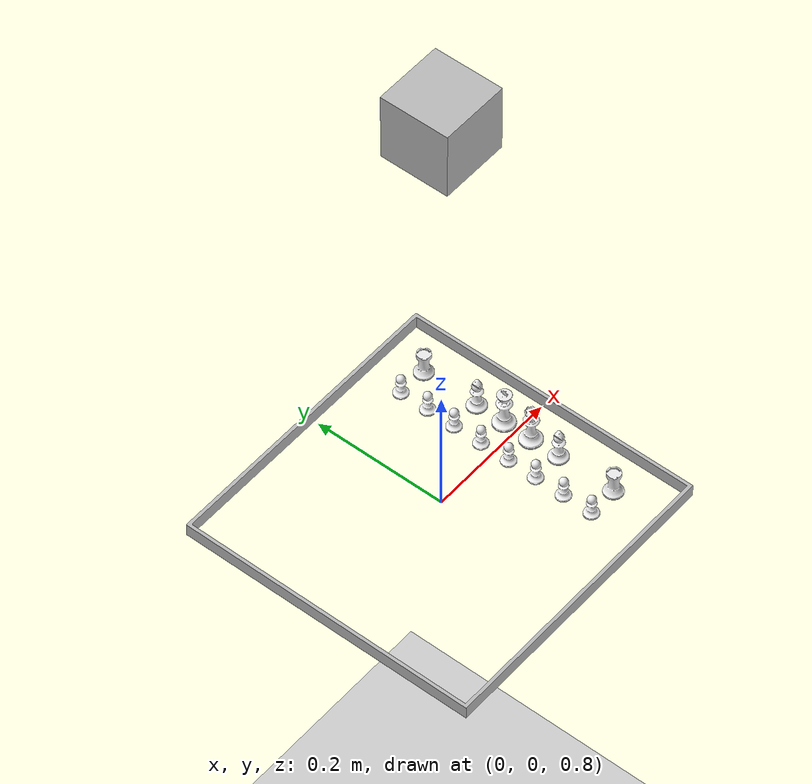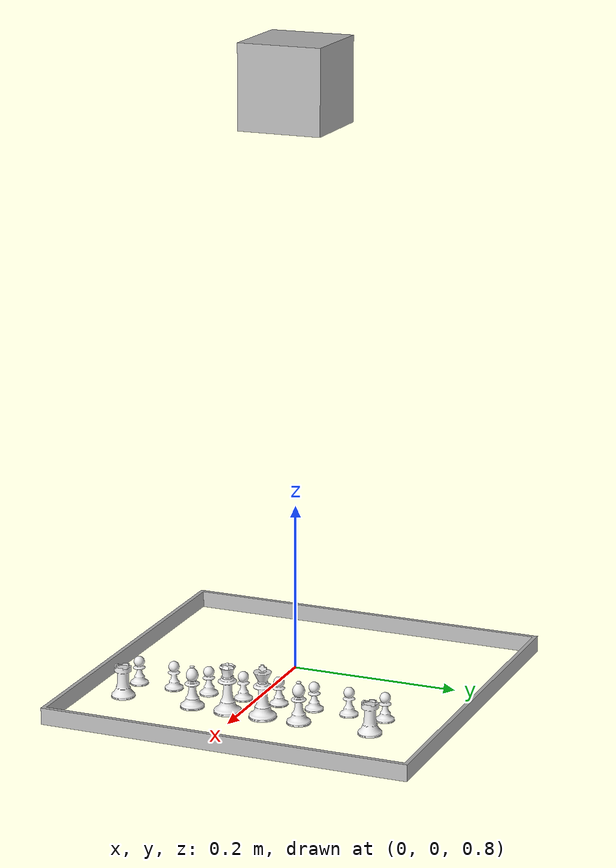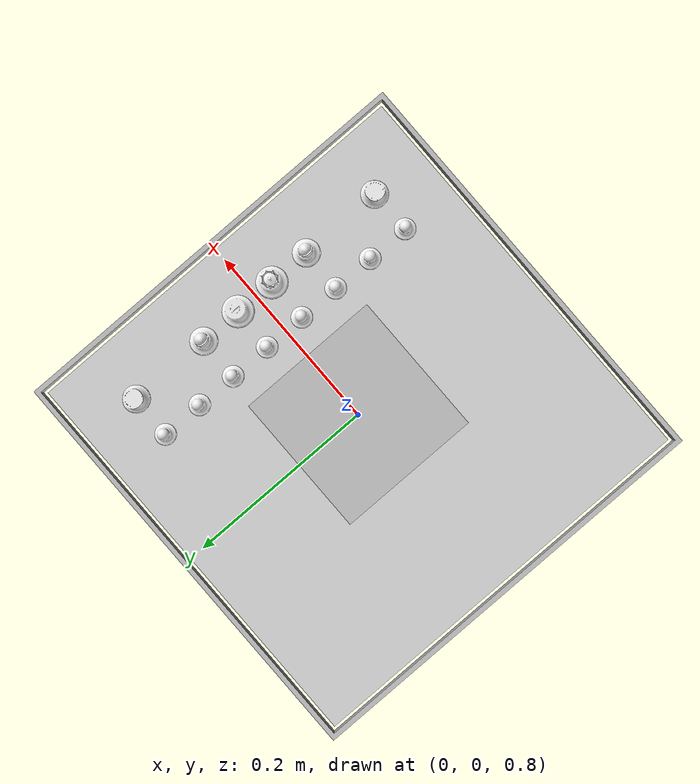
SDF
<sdf version="1.7">
 <world name="default">
  <model name="ground_plane">
   <static>1</static>
   <link name="link">
    <collision name="collision">
     <geometry><plane><normal>0 0 1</normal><size>100 100</size></plane></geometry>
     <surface>
      <contact><collide_bitmask>65535</collide_bitmask></contact>
      <friction><ode><mu>100</mu><mu2>50</mu2></ode></friction>
     </surface>
    </collision>
    <visual name="visual">
     <cast_shadows>0</cast_shadows>
     <geometry><plane><normal>0 0 1</normal><size>100 100</size></plane></geometry>
     <material>
      <script><uri>file://media/materials/scripts/gazebo.material</uri><name>Gazebo/Grey</name></script>
     </material>
    </visual>
   </link>
  </model>
  <model name="pawn_white">
   <link name="link">
    <inertial>
     <mass>0.1</mass>
     <inertia>
      <ixx>0.166667</ixx>
      <ixy>0</ixy>
      <ixz>0</ixz>
      <iyy>0.166667</iyy>
      <iyz>0</iyz>
      <izz>0.166667</izz>
     </inertia>
    </inertial>
    <visual name="visual">
     <geometry><mesh><uri>model://pawn_white/pawn.stl</uri><scale>0.001 0.001 0.001</scale></mesh></geometry>
     <material>
      <lighting>1</lighting>
      <script><uri>file://media/materials/scripts/gazebo.material</uri><name>Gazebo/White</name></script>
      <shader type="pixel"><normal_map>__default__</normal_map></shader>
      <ambient>1 1 1 1</ambient>
      <diffuse>1 1 1 1</diffuse>
      <specular>0.1 0.1 0.1 1</specular>
      <emissive>0 0 0 1</emissive>
     </material>
    </visual>
    <collision name="collision">
     <geometry><mesh><uri>model://pawn_white/pawn.stl</uri><scale>0.001 0.001 0.001</scale></mesh></geometry>
     <surface>
      <friction>
       <ode><mu>1</mu><mu2>1</mu2><fdir1>0 0 0</fdir1><slip1>0</slip1><slip2>0</slip2></ode>
       <torsional>
        <coefficient>1</coefficient>
        <patch_radius>0</patch_radius>
        <surface_radius>0</surface_radius>
        <use_patch_radius>1</use_patch_radius>
        <ode><slip>0</slip></ode>
       </torsional>
      </friction>
      <bounce><restitution_coefficient>0</restitution_coefficient><threshold>1e+06</threshold></bounce>
      <contact>
       <collide_without_contact>0</collide_without_contact>
       <collide_without_contact_bitmask>1</collide_without_contact_bitmask>
       <collide_bitmask>1</collide_bitmask>
       <ode>
        <soft_cfm>0</soft_cfm>
        <soft_erp>0.2</soft_erp>
        <kp>1e+13</kp>
        <kd>1</kd>
        <max_vel>0.01</max_vel>
        <min_depth>0</min_depth>
       </ode>
       <bullet>
        <split_impulse>1</split_impulse>
        <split_impulse_penetration_threshold>-0.01</split_impulse_penetration_threshold>
        <soft_cfm>0</soft_cfm>
        <soft_erp>0.2</soft_erp>
        <kp>1e+13</kp>
        <kd>1</kd>
       </bullet>
      </contact>
     </surface>
    </collision>
   </link>
   <static>0</static>
   <pose>0.108293 -0.153419 0.795226 -0.00037 -2.4e-05 0.004243</pose>
  </model>
  <model name="pawn_white_0">
   <link name="link">
    <inertial>
     <mass>0.1</mass>
     <inertia>
      <ixx>0.166667</ixx>
      <ixy>0</ixy>
      <ixz>0</ixz>
      <iyy>0.166667</iyy>
      <iyz>0</iyz>
      <izz>0.166667</izz>
     </inertia>
    </inertial>
    <visual name="visual">
     <geometry><mesh><uri>model://pawn_white/pawn.stl</uri><scale>0.001 0.001 0.001</scale></mesh></geometry>
     <material>
      <lighting>1</lighting>
      <script><uri>file://media/materials/scripts/gazebo.material</uri><name>Gazebo/White</name></script>
      <shader type="pixel"><normal_map>__default__</normal_map></shader>
      <ambient>1 1 1 1</ambient>
      <diffuse>1 1 1 1</diffuse>
      <specular>0.1 0.1 0.1 1</specular>
      <emissive>0 0 0 1</emissive>
     </material>
    </visual>
    <collision name="collision">
     <geometry><mesh><uri>model://pawn_white/pawn.stl</uri><scale>0.001 0.001 0.001</scale></mesh></geometry>
     <surface>
      <friction>
       <ode><mu>1</mu><mu2>1</mu2><fdir1>0 0 0</fdir1><slip1>0</slip1><slip2>0</slip2></ode>
       <torsional>
        <coefficient>1</coefficient>
        <patch_radius>0</patch_radius>
        <surface_radius>0</surface_radius>
        <use_patch_radius>1</use_patch_radius>
        <ode><slip>0</slip></ode>
       </torsional>
      </friction>
      <bounce><restitution_coefficient>0</restitution_coefficient><threshold>1e+06</threshold></bounce>
      <contact>
       <collide_without_contact>0</collide_without_contact>
       <collide_without_contact_bitmask>1</collide_without_contact_bitmask>
       <collide_bitmask>1</collide_bitmask>
       <ode>
        <soft_cfm>0</soft_cfm>
        <soft_erp>0.2</soft_erp>
        <kp>1e+13</kp>
        <kd>1</kd>
        <max_vel>0.01</max_vel>
        <min_depth>0</min_depth>
       </ode>
       <bullet>
        <split_impulse>1</split_impulse>
        <split_impulse_penetration_threshold>-0.01</split_impulse_penetration_threshold>
        <soft_cfm>0</soft_cfm>
        <soft_erp>0.2</soft_erp>
        <kp>1e+13</kp>
        <kd>1</kd>
       </bullet>
      </contact>
     </surface>
    </collision>
   </link>
   <static>0</static>
   <pose>0.10847 -0.108572 0.795231 0.000772 -2.1e-05 0.008904</pose>
  </model>
  <model name="pawn_white_1">
   <link name="link">
    <inertial>
     <mass>0.1</mass>
     <inertia>
      <ixx>0.166667</ixx>
      <ixy>0</ixy>
      <ixz>0</ixz>
      <iyy>0.166667</iyy>
      <iyz>0</iyz>
      <izz>0.166667</izz>
     </inertia>
    </inertial>
    <visual name="visual">
     <geometry><mesh><uri>model://pawn_white/pawn.stl</uri><scale>0.001 0.001 0.001</scale></mesh></geometry>
     <material>
      <lighting>1</lighting>
      <script><uri>file://media/materials/scripts/gazebo.material</uri><name>Gazebo/White</name></script>
      <shader type="pixel"><normal_map>__default__</normal_map></shader>
      <ambient>1 1 1 1</ambient>
      <diffuse>1 1 1 1</diffuse>
      <specular>0.1 0.1 0.1 1</specular>
      <emissive>0 0 0 1</emissive>
     </material>
    </visual>
    <collision name="collision">
     <geometry><mesh><uri>model://pawn_white/pawn.stl</uri><scale>0.001 0.001 0.001</scale></mesh></geometry>
     <surface>
      <friction>
       <ode><mu>1</mu><mu2>1</mu2><fdir1>0 0 0</fdir1><slip1>0</slip1><slip2>0</slip2></ode>
       <torsional>
        <coefficient>1</coefficient>
        <patch_radius>0</patch_radius>
        <surface_radius>0</surface_radius>
        <use_patch_radius>1</use_patch_radius>
        <ode><slip>0</slip></ode>
       </torsional>
      </friction>
      <bounce><restitution_coefficient>0</restitution_coefficient><threshold>1e+06</threshold></bounce>
      <contact>
       <collide_without_contact>0</collide_without_contact>
       <collide_without_contact_bitmask>1</collide_without_contact_bitmask>
       <collide_bitmask>1</collide_bitmask>
       <ode>
        <soft_cfm>0</soft_cfm>
        <soft_erp>0.2</soft_erp>
        <kp>1e+13</kp>
        <kd>1</kd>
        <max_vel>0.01</max_vel>
        <min_depth>0</min_depth>
       </ode>
       <bullet>
        <split_impulse>1</split_impulse>
        <split_impulse_penetration_threshold>-0.01</split_impulse_penetration_threshold>
        <soft_cfm>0</soft_cfm>
        <soft_erp>0.2</soft_erp>
        <kp>1e+13</kp>
        <kd>1</kd>
       </bullet>
      </contact>
     </surface>
    </collision>
   </link>
   <static>0</static>
   <pose>0.108512 -0.064083 0.795224 0.000133 2.1e-05 0.023056</pose>
  </model>
  <model name="pawn_white_2">
   <link name="link">
    <inertial>
     <mass>0.1</mass>
     <inertia>
      <ixx>0.166667</ixx>
      <ixy>0</ixy>
      <ixz>0</ixz>
      <iyy>0.166667</iyy>
      <iyz>0</iyz>
      <izz>0.166667</izz>
     </inertia>
    </inertial>
    <visual name="visual">
     <geometry><mesh><uri>model://pawn_white/pawn.stl</uri><scale>0.001 0.001 0.001</scale></mesh></geometry>
     <material>
      <lighting>1</lighting>
      <script><uri>file://media/materials/scripts/gazebo.material</uri><name>Gazebo/White</name></script>
      <shader type="pixel"><normal_map>__default__</normal_map></shader>
      <ambient>1 1 1 1</ambient>
      <diffuse>1 1 1 1</diffuse>
      <specular>0.1 0.1 0.1 1</specular>
      <emissive>0 0 0 1</emissive>
     </material>
    </visual>
    <collision name="collision">
     <geometry><mesh><uri>model://pawn_white/pawn.stl</uri><scale>0.001 0.001 0.001</scale></mesh></geometry>
     <surface>
      <friction>
       <ode><mu>1</mu><mu2>1</mu2><fdir1>0 0 0</fdir1><slip1>0</slip1><slip2>0</slip2></ode>
       <torsional>
        <coefficient>1</coefficient>
        <patch_radius>0</patch_radius>
        <surface_radius>0</surface_radius>
        <use_patch_radius>1</use_patch_radius>
        <ode><slip>0</slip></ode>
       </torsional>
      </friction>
      <bounce><restitution_coefficient>0</restitution_coefficient><threshold>1e+06</threshold></bounce>
      <contact>
       <collide_without_contact>0</collide_without_contact>
       <collide_without_contact_bitmask>1</collide_without_contact_bitmask>
       <collide_bitmask>1</collide_bitmask>
       <ode>
        <soft_cfm>0</soft_cfm>
        <soft_erp>0.2</soft_erp>
        <kp>1e+13</kp>
        <kd>1</kd>
        <max_vel>0.01</max_vel>
        <min_depth>0</min_depth>
       </ode>
       <bullet>
        <split_impulse>1</split_impulse>
        <split_impulse_penetration_threshold>-0.01</split_impulse_penetration_threshold>
        <soft_cfm>0</soft_cfm>
        <soft_erp>0.2</soft_erp>
        <kp>1e+13</kp>
        <kd>1</kd>
       </bullet>
      </contact>
     </surface>
    </collision>
   </link>
   <static>0</static>
   <pose>0.108532 -0.020463 0.795231 -0.000812 0.000112 0.013914</pose>
  </model>
  <model name="pawn_white_3">
   <link name="link">
    <inertial>
     <mass>0.1</mass>
     <inertia>
      <ixx>0.166667</ixx>
      <ixy>0</ixy>
      <ixz>0</ixz>
      <iyy>0.166667</iyy>
      <iyz>0</iyz>
      <izz>0.166667</izz>
     </inertia>
    </inertial>
    <visual name="visual">
     <geometry><mesh><uri>model://pawn_white/pawn.stl</uri><scale>0.001 0.001 0.001</scale></mesh></geometry>
     <material>
      <lighting>1</lighting>
      <script><uri>file://media/materials/scripts/gazebo.material</uri><name>Gazebo/White</name></script>
      <shader type="pixel"><normal_map>__default__</normal_map></shader>
      <ambient>1 1 1 1</ambient>
      <diffuse>1 1 1 1</diffuse>
      <specular>0.1 0.1 0.1 1</specular>
      <emissive>0 0 0 1</emissive>
     </material>
    </visual>
    <collision name="collision">
     <geometry><mesh><uri>model://pawn_white/pawn.stl</uri><scale>0.001 0.001 0.001</scale></mesh></geometry>
     <surface>
      <friction>
       <ode><mu>1</mu><mu2>1</mu2><fdir1>0 0 0</fdir1><slip1>0</slip1><slip2>0</slip2></ode>
       <torsional>
        <coefficient>1</coefficient>
        <patch_radius>0</patch_radius>
        <surface_radius>0</surface_radius>
        <use_patch_radius>1</use_patch_radius>
        <ode><slip>0</slip></ode>
       </torsional>
      </friction>
      <bounce><restitution_coefficient>0</restitution_coefficient><threshold>1e+06</threshold></bounce>
      <contact>
       <collide_without_contact>0</collide_without_contact>
       <collide_without_contact_bitmask>1</collide_without_contact_bitmask>
       <collide_bitmask>1</collide_bitmask>
       <ode>
        <soft_cfm>0</soft_cfm>
        <soft_erp>0.2</soft_erp>
        <kp>1e+13</kp>
        <kd>1</kd>
        <max_vel>0.01</max_vel>
        <min_depth>0</min_depth>
       </ode>
       <bullet>
        <split_impulse>1</split_impulse>
        <split_impulse_penetration_threshold>-0.01</split_impulse_penetration_threshold>
        <soft_cfm>0</soft_cfm>
        <soft_erp>0.2</soft_erp>
        <kp>1e+13</kp>
        <kd>1</kd>
       </bullet>
      </contact>
     </surface>
    </collision>
   </link>
   <static>0</static>
   <pose>0.108569 0.024248 0.795231 0.000532 -0.000583 0.00706</pose>
  </model>
  <model name="pawn_white_4">
   <link name="link">
    <inertial>
     <mass>0.1</mass>
     <inertia>
      <ixx>0.166667</ixx>
      <ixy>0</ixy>
      <ixz>0</ixz>
      <iyy>0.166667</iyy>
      <iyz>0</iyz>
      <izz>0.166667</izz>
     </inertia>
    </inertial>
    <visual name="visual">
     <geometry><mesh><uri>model://pawn_white/pawn.stl</uri><scale>0.001 0.001 0.001</scale></mesh></geometry>
     <material>
      <lighting>1</lighting>
      <script><uri>file://media/materials/scripts/gazebo.material</uri><name>Gazebo/White</name></script>
      <shader type="pixel"><normal_map>__default__</normal_map></shader>
      <ambient>1 1 1 1</ambient>
      <diffuse>1 1 1 1</diffuse>
      <specular>0.1 0.1 0.1 1</specular>
      <emissive>0 0 0 1</emissive>
     </material>
    </visual>
    <collision name="collision">
     <geometry><mesh><uri>model://pawn_white/pawn.stl</uri><scale>0.001 0.001 0.001</scale></mesh></geometry>
     <surface>
      <friction>
       <ode><mu>1</mu><mu2>1</mu2><fdir1>0 0 0</fdir1><slip1>0</slip1><slip2>0</slip2></ode>
       <torsional>
        <coefficient>1</coefficient>
        <patch_radius>0</patch_radius>
        <surface_radius>0</surface_radius>
        <use_patch_radius>1</use_patch_radius>
        <ode><slip>0</slip></ode>
       </torsional>
      </friction>
      <bounce><restitution_coefficient>0</restitution_coefficient><threshold>1e+06</threshold></bounce>
      <contact>
       <collide_without_contact>0</collide_without_contact>
       <collide_without_contact_bitmask>1</collide_without_contact_bitmask>
       <collide_bitmask>1</collide_bitmask>
       <ode>
        <soft_cfm>0</soft_cfm>
        <soft_erp>0.2</soft_erp>
        <kp>1e+13</kp>
        <kd>1</kd>
        <max_vel>0.01</max_vel>
        <min_depth>0</min_depth>
       </ode>
       <bullet>
        <split_impulse>1</split_impulse>
        <split_impulse_penetration_threshold>-0.01</split_impulse_penetration_threshold>
        <soft_cfm>0</soft_cfm>
        <soft_erp>0.2</soft_erp>
        <kp>1e+13</kp>
        <kd>1</kd>
       </bullet>
      </contact>
     </surface>
    </collision>
   </link>
   <static>0</static>
   <pose>0.108574 0.068031 0.795226 0.000129 -0.000297 0.000487</pose>
  </model>
  <model name="pawn_white_5">
   <link name="link">
    <inertial>
     <mass>0.1</mass>
     <inertia>
      <ixx>0.166667</ixx>
      <ixy>0</ixy>
      <ixz>0</ixz>
      <iyy>0.166667</iyy>
      <iyz>0</iyz>
      <izz>0.166667</izz>
     </inertia>
    </inertial>
    <visual name="visual">
     <geometry><mesh><uri>model://pawn_white/pawn.stl</uri><scale>0.001 0.001 0.001</scale></mesh></geometry>
     <material>
      <lighting>1</lighting>
      <script><uri>file://media/materials/scripts/gazebo.material</uri><name>Gazebo/White</name></script>
      <shader type="pixel"><normal_map>__default__</normal_map></shader>
      <ambient>1 1 1 1</ambient>
      <diffuse>1 1 1 1</diffuse>
      <specular>0.1 0.1 0.1 1</specular>
      <emissive>0 0 0 1</emissive>
     </material>
    </visual>
    <collision name="collision">
     <geometry><mesh><uri>model://pawn_white/pawn.stl</uri><scale>0.001 0.001 0.001</scale></mesh></geometry>
     <surface>
      <friction>
       <ode><mu>1</mu><mu2>1</mu2><fdir1>0 0 0</fdir1><slip1>0</slip1><slip2>0</slip2></ode>
       <torsional>
        <coefficient>1</coefficient>
        <patch_radius>0</patch_radius>
        <surface_radius>0</surface_radius>
        <use_patch_radius>1</use_patch_radius>
        <ode><slip>0</slip></ode>
       </torsional>
      </friction>
      <bounce><restitution_coefficient>0</restitution_coefficient><threshold>1e+06</threshold></bounce>
      <contact>
       <collide_without_contact>0</collide_without_contact>
       <collide_without_contact_bitmask>1</collide_without_contact_bitmask>
       <collide_bitmask>1</collide_bitmask>
       <ode>
        <soft_cfm>0</soft_cfm>
        <soft_erp>0.2</soft_erp>
        <kp>1e+13</kp>
        <kd>1</kd>
        <max_vel>0.01</max_vel>
        <min_depth>0</min_depth>
       </ode>
       <bullet>
        <split_impulse>1</split_impulse>
        <split_impulse_penetration_threshold>-0.01</split_impulse_penetration_threshold>
        <soft_cfm>0</soft_cfm>
        <soft_erp>0.2</soft_erp>
        <kp>1e+13</kp>
        <kd>1</kd>
       </bullet>
      </contact>
     </surface>
    </collision>
   </link>
   <static>0</static>
   <pose>0.108693 0.111114 0.795187 -0.000192 -0.000199 -0.010673</pose>
  </model>
  <model name="pawn_white_6">
   <link name="link">
    <inertial>
     <mass>0.1</mass>
     <inertia>
      <ixx>0.166667</ixx>
      <ixy>0</ixy>
      <ixz>0</ixz>
      <iyy>0.166667</iyy>
      <iyz>0</iyz>
      <izz>0.166667</izz>
     </inertia>
    </inertial>
    <visual name="visual">
     <geometry><mesh><uri>model://pawn_white/pawn.stl</uri><scale>0.001 0.001 0.001</scale></mesh></geometry>
     <material>
      <lighting>1</lighting>
      <script><uri>file://media/materials/scripts/gazebo.material</uri><name>Gazebo/White</name></script>
      <shader type="pixel"><normal_map>__default__</normal_map></shader>
      <ambient>1 1 1 1</ambient>
      <diffuse>1 1 1 1</diffuse>
      <specular>0.1 0.1 0.1 1</specular>
      <emissive>0 0 0 1</emissive>
     </material>
    </visual>
    <collision name="collision">
     <geometry><mesh><uri>model://pawn_white/pawn.stl</uri><scale>0.001 0.001 0.001</scale></mesh></geometry>
     <surface>
      <friction>
       <ode><mu>1</mu><mu2>1</mu2><fdir1>0 0 0</fdir1><slip1>0</slip1><slip2>0</slip2></ode>
       <torsional>
        <coefficient>1</coefficient>
        <patch_radius>0</patch_radius>
        <surface_radius>0</surface_radius>
        <use_patch_radius>1</use_patch_radius>
        <ode><slip>0</slip></ode>
       </torsional>
      </friction>
      <bounce><restitution_coefficient>0</restitution_coefficient><threshold>1e+06</threshold></bounce>
      <contact>
       <collide_without_contact>0</collide_without_contact>
       <collide_without_contact_bitmask>1</collide_without_contact_bitmask>
       <collide_bitmask>1</collide_bitmask>
       <ode>
        <soft_cfm>0</soft_cfm>
        <soft_erp>0.2</soft_erp>
        <kp>1e+13</kp>
        <kd>1</kd>
        <max_vel>0.01</max_vel>
        <min_depth>0</min_depth>
       </ode>
       <bullet>
        <split_impulse>1</split_impulse>
        <split_impulse_penetration_threshold>-0.01</split_impulse_penetration_threshold>
        <soft_cfm>0</soft_cfm>
        <soft_erp>0.2</soft_erp>
        <kp>1e+13</kp>
        <kd>1</kd>
       </bullet>
      </contact>
     </surface>
    </collision>
   </link>
   <static>0</static>
   <pose>0.108595 0.155192 0.795232 0.000167 -0.000938 -0.018302</pose>
  </model>
  <model name="rook_white">
   <link name="link">
    <inertial>
     <mass>0.1</mass>
     <inertia>
      <ixx>0.166667</ixx>
      <ixy>0</ixy>
      <ixz>0</ixz>
      <iyy>0.166667</iyy>
      <iyz>0</iyz>
      <izz>0.166667</izz>
     </inertia>
    </inertial>
    <visual name="visual">
     <geometry><mesh><uri>model://rook_white/rook.stl</uri><scale>0.001 0.001 0.001</scale></mesh></geometry>
     <material>
      <lighting>1</lighting>
      <script><uri>file://media/materials/scripts/gazebo.material</uri><name>Gazebo/White</name></script>
      <shader type="pixel"><normal_map>__default__</normal_map></shader>
      <ambient>1 1 1 1</ambient>
      <diffuse>1 1 1 1</diffuse>
      <specular>0.1 0.1 0.1 1</specular>
      <emissive>0 0 0 1</emissive>
     </material>
    </visual>
    <collision name="collision">
     <geometry><mesh><uri>model://rook_white/rook.stl</uri><scale>0.001 0.001 0.001</scale></mesh></geometry>
     <surface>
      <friction>
       <ode><mu>1</mu><mu2>1</mu2><fdir1>0 0 0</fdir1><slip1>0</slip1><slip2>0</slip2></ode>
       <torsional>
        <coefficient>1</coefficient>
        <patch_radius>0</patch_radius>
        <surface_radius>0</surface_radius>
        <use_patch_radius>1</use_patch_radius>
        <ode><slip>0</slip></ode>
       </torsional>
      </friction>
      <bounce><restitution_coefficient>0</restitution_coefficient><threshold>1e+06</threshold></bounce>
      <contact>
       <collide_without_contact>0</collide_without_contact>
       <collide_without_contact_bitmask>1</collide_without_contact_bitmask>
       <collide_bitmask>1</collide_bitmask>
       <ode>
        <soft_cfm>0</soft_cfm>
        <soft_erp>0.2</soft_erp>
        <kp>1e+13</kp>
        <kd>1</kd>
        <max_vel>0.01</max_vel>
        <min_depth>0</min_depth>
       </ode>
       <bullet>
        <split_impulse>1</split_impulse>
        <split_impulse_penetration_threshold>-0.01</split_impulse_penetration_threshold>
        <soft_cfm>0</soft_cfm>
        <soft_erp>0.2</soft_erp>
        <kp>1e+13</kp>
        <kd>1</kd>
       </bullet>
      </contact>
     </surface>
    </collision>
   </link>
   <static>0</static>
   <pose>0.153377 -0.152852 0.795175 8.5e-05 -0.000113 0.003346</pose>
  </model>
  <model name="rook_white_0">
   <link name="link">
    <inertial>
     <mass>0.1</mass>
     <inertia>
      <ixx>0.166667</ixx>
      <ixy>0</ixy>
      <ixz>0</ixz>
      <iyy>0.166667</iyy>
      <iyz>0</iyz>
      <izz>0.166667</izz>
     </inertia>
    </inertial>
    <visual name="visual">
     <geometry><mesh><uri>model://rook_white/rook.stl</uri><scale>0.001 0.001 0.001</scale></mesh></geometry>
     <material>
      <lighting>1</lighting>
      <script><uri>file://media/materials/scripts/gazebo.material</uri><name>Gazebo/White</name></script>
      <shader type="pixel"><normal_map>__default__</normal_map></shader>
      <ambient>1 1 1 1</ambient>
      <diffuse>1 1 1 1</diffuse>
      <specular>0.1 0.1 0.1 1</specular>
      <emissive>0 0 0 1</emissive>
     </material>
    </visual>
    <collision name="collision">
     <geometry><mesh><uri>model://rook_white/rook.stl</uri><scale>0.001 0.001 0.001</scale></mesh></geometry>
     <surface>
      <friction>
       <ode><mu>1</mu><mu2>1</mu2><fdir1>0 0 0</fdir1><slip1>0</slip1><slip2>0</slip2></ode>
       <torsional>
        <coefficient>1</coefficient>
        <patch_radius>0</patch_radius>
        <surface_radius>0</surface_radius>
        <use_patch_radius>1</use_patch_radius>
        <ode><slip>0</slip></ode>
       </torsional>
      </friction>
      <bounce><restitution_coefficient>0</restitution_coefficient><threshold>1e+06</threshold></bounce>
      <contact>
       <collide_without_contact>0</collide_without_contact>
       <collide_without_contact_bitmask>1</collide_without_contact_bitmask>
       <collide_bitmask>1</collide_bitmask>
       <ode>
        <soft_cfm>0</soft_cfm>
        <soft_erp>0.2</soft_erp>
        <kp>1e+13</kp>
        <kd>1</kd>
        <max_vel>0.01</max_vel>
        <min_depth>0</min_depth>
       </ode>
       <bullet>
        <split_impulse>1</split_impulse>
        <split_impulse_penetration_threshold>-0.01</split_impulse_penetration_threshold>
        <soft_cfm>0</soft_cfm>
        <soft_erp>0.2</soft_erp>
        <kp>1e+13</kp>
        <kd>1</kd>
       </bullet>
      </contact>
     </surface>
    </collision>
   </link>
   <static>0</static>
   <pose>0.153431 0.154267 0.795135 8e-06 -1.6e-05 -0.011572</pose>
  </model>
  <model name="bishop_white">
   <link name="link">
    <inertial>
     <mass>0.1</mass>
     <inertia>
      <ixx>0.166667</ixx>
      <ixy>0</ixy>
      <ixz>0</ixz>
      <iyy>0.166667</iyy>
      <iyz>0</iyz>
      <izz>0.166667</izz>
     </inertia>
    </inertial>
    <visual name="visual">
     <geometry><mesh><uri>model://bishop_white/bishop.stl</uri><scale>0.001 0.001 0.001</scale></mesh></geometry>
     <material>
      <lighting>1</lighting>
      <script><uri>file://media/materials/scripts/gazebo.material</uri><name>Gazebo/White</name></script>
      <shader type="pixel"><normal_map>__default__</normal_map></shader>
      <ambient>1 1 1 1</ambient>
      <diffuse>1 1 1 1</diffuse>
      <specular>0.1 0.1 0.1 1</specular>
      <emissive>0 0 0 1</emissive>
     </material>
    </visual>
    <collision name="collision">
     <geometry><mesh><uri>model://bishop_white/bishop.stl</uri><scale>0.001 0.001 0.001</scale></mesh></geometry>
     <surface>
      <friction>
       <ode><mu>1</mu><mu2>1</mu2><fdir1>0 0 0</fdir1><slip1>0</slip1><slip2>0</slip2></ode>
       <torsional>
        <coefficient>1</coefficient>
        <patch_radius>0</patch_radius>
        <surface_radius>0</surface_radius>
        <use_patch_radius>1</use_patch_radius>
        <ode><slip>0</slip></ode>
       </torsional>
      </friction>
      <bounce><restitution_coefficient>0</restitution_coefficient><threshold>1e+06</threshold></bounce>
      <contact>
       <collide_without_contact>0</collide_without_contact>
       <collide_without_contact_bitmask>1</collide_without_contact_bitmask>
       <collide_bitmask>1</collide_bitmask>
       <ode>
        <soft_cfm>0</soft_cfm>
        <soft_erp>0.2</soft_erp>
        <kp>1e+13</kp>
        <kd>1</kd>
        <max_vel>0.01</max_vel>
        <min_depth>0</min_depth>
       </ode>
       <bullet>
        <split_impulse>1</split_impulse>
        <split_impulse_penetration_threshold>-0.01</split_impulse_penetration_threshold>
        <soft_cfm>0</soft_cfm>
        <soft_erp>0.2</soft_erp>
        <kp>1e+13</kp>
        <kd>1</kd>
       </bullet>
      </contact>
     </surface>
    </collision>
   </link>
   <static>0</static>
   <pose>0.153448 -0.064865 0.795056 0.000145 -0.000137 0.003791</pose>
  </model>
  <model name="bishop_white_0">
   <link name="link">
    <inertial>
     <mass>0.1</mass>
     <inertia>
      <ixx>0.166667</ixx>
      <ixy>0</ixy>
      <ixz>0</ixz>
      <iyy>0.166667</iyy>
      <iyz>0</iyz>
      <izz>0.166667</izz>
     </inertia>
    </inertial>
    <visual name="visual">
     <geometry><mesh><uri>model://bishop_white/bishop.stl</uri><scale>0.001 0.001 0.001</scale></mesh></geometry>
     <material>
      <lighting>1</lighting>
      <script><uri>file://media/materials/scripts/gazebo.material</uri><name>Gazebo/White</name></script>
      <shader type="pixel"><normal_map>__default__</normal_map></shader>
      <ambient>1 1 1 1</ambient>
      <diffuse>1 1 1 1</diffuse>
      <specular>0.1 0.1 0.1 1</specular>
      <emissive>0 0 0 1</emissive>
     </material>
    </visual>
    <collision name="collision">
     <geometry><mesh><uri>model://bishop_white/bishop.stl</uri><scale>0.001 0.001 0.001</scale></mesh></geometry>
     <surface>
      <friction>
       <ode><mu>1</mu><mu2>1</mu2><fdir1>0 0 0</fdir1><slip1>0</slip1><slip2>0</slip2></ode>
       <torsional>
        <coefficient>1</coefficient>
        <patch_radius>0</patch_radius>
        <surface_radius>0</surface_radius>
        <use_patch_radius>1</use_patch_radius>
        <ode><slip>0</slip></ode>
       </torsional>
      </friction>
      <bounce><restitution_coefficient>0</restitution_coefficient><threshold>1e+06</threshold></bounce>
      <contact>
       <collide_without_contact>0</collide_without_contact>
       <collide_without_contact_bitmask>1</collide_without_contact_bitmask>
       <collide_bitmask>1</collide_bitmask>
       <ode>
        <soft_cfm>0</soft_cfm>
        <soft_erp>0.2</soft_erp>
        <kp>1e+13</kp>
        <kd>1</kd>
        <max_vel>0.01</max_vel>
        <min_depth>0</min_depth>
       </ode>
       <bullet>
        <split_impulse>1</split_impulse>
        <split_impulse_penetration_threshold>-0.01</split_impulse_penetration_threshold>
        <soft_cfm>0</soft_cfm>
        <soft_erp>0.2</soft_erp>
        <kp>1e+13</kp>
        <kd>1</kd>
       </bullet>
      </contact>
     </surface>
    </collision>
   </link>
   <static>0</static>
   <pose>0.153381 0.067428 0.795079 2.6e-05 -2.6e-05 -0.008082</pose>
  </model>
  <model name="queen_white">
   <link name="link">
    <inertial>
     <mass>0.1</mass>
     <inertia>
      <ixx>0.166667</ixx>
      <ixy>0</ixy>
      <ixz>0</ixz>
      <iyy>0.166667</iyy>
      <iyz>0</iyz>
      <izz>0.166667</izz>
     </inertia>
    </inertial>
    <visual name="visual">
     <geometry><mesh><uri>model://queen_white/queen.stl</uri><scale>0.001 0.001 0.001</scale></mesh></geometry>
     <material>
      <lighting>1</lighting>
      <script><uri>file://media/materials/scripts/gazebo.material</uri><name>Gazebo/White</name></script>
      <shader type="pixel"><normal_map>__default__</normal_map></shader>
      <ambient>1 1 1 1</ambient>
      <diffuse>1 1 1 1</diffuse>
      <specular>0.1 0.1 0.1 1</specular>
      <emissive>0 0 0 1</emissive>
     </material>
    </visual>
    <collision name="collision">
     <geometry><mesh><uri>model://queen_white/queen.stl</uri><scale>0.001 0.001 0.001</scale></mesh></geometry>
     <surface>
      <friction>
       <ode><mu>1</mu><mu2>1</mu2><fdir1>0 0 0</fdir1><slip1>0</slip1><slip2>0</slip2></ode>
       <torsional>
        <coefficient>1</coefficient>
        <patch_radius>0</patch_radius>
        <surface_radius>0</surface_radius>
        <use_patch_radius>1</use_patch_radius>
        <ode><slip>0</slip></ode>
       </torsional>
      </friction>
      <bounce><restitution_coefficient>0</restitution_coefficient><threshold>1e+06</threshold></bounce>
      <contact>
       <collide_without_contact>0</collide_without_contact>
       <collide_without_contact_bitmask>1</collide_without_contact_bitmask>
       <collide_bitmask>1</collide_bitmask>
       <ode>
        <soft_cfm>0</soft_cfm>
        <soft_erp>0.2</soft_erp>
        <kp>1e+13</kp>
        <kd>1</kd>
        <max_vel>0.01</max_vel>
        <min_depth>0</min_depth>
       </ode>
       <bullet>
        <split_impulse>1</split_impulse>
        <split_impulse_penetration_threshold>-0.01</split_impulse_penetration_threshold>
        <soft_cfm>0</soft_cfm>
        <soft_erp>0.2</soft_erp>
        <kp>1e+13</kp>
        <kd>1</kd>
       </bullet>
      </contact>
     </surface>
    </collision>
   </link>
   <static>0</static>
   <pose>0.153456 -0.020495 0.794905 1.2e-05 -2.1e-05 -0.002225</pose>
  </model>
  <model name="king_white">
   <link name="link">
    <inertial>
     <mass>0.1</mass>
     <inertia>
      <ixx>0.166667</ixx>
      <ixy>0</ixy>
      <ixz>0</ixz>
      <iyy>0.166667</iyy>
      <iyz>0</iyz>
      <izz>0.166667</izz>
     </inertia>
    </inertial>
    <visual name="visual">
     <geometry><mesh><uri>model://king_white/king.stl</uri><scale>0.001 0.001 0.001</scale></mesh></geometry>
     <material>
      <lighting>1</lighting>
      <script><uri>file://media/materials/scripts/gazebo.material</uri><name>Gazebo/White</name></script>
      <shader type="pixel"><normal_map>__default__</normal_map></shader>
      <ambient>1 1 1 1</ambient>
      <diffuse>1 1 1 1</diffuse>
      <specular>0.1 0.1 0.1 1</specular>
      <emissive>0 0 0 1</emissive>
     </material>
    </visual>
    <collision name="collision">
     <geometry><mesh><uri>model://king_white/king.stl</uri><scale>0.001 0.001 0.001</scale></mesh></geometry>
     <surface>
      <friction>
       <ode><mu>1</mu><mu2>1</mu2><fdir1>0 0 0</fdir1><slip1>0</slip1><slip2>0</slip2></ode>
       <torsional>
        <coefficient>1</coefficient>
        <patch_radius>0</patch_radius>
        <surface_radius>0</surface_radius>
        <use_patch_radius>1</use_patch_radius>
        <ode><slip>0</slip></ode>
       </torsional>
      </friction>
      <bounce><restitution_coefficient>0</restitution_coefficient><threshold>1e+06</threshold></bounce>
      <contact>
       <collide_without_contact>0</collide_without_contact>
       <collide_without_contact_bitmask>1</collide_without_contact_bitmask>
       <collide_bitmask>1</collide_bitmask>
       <ode>
        <soft_cfm>0</soft_cfm>
        <soft_erp>0.2</soft_erp>
        <kp>1e+13</kp>
        <kd>1</kd>
        <max_vel>0.01</max_vel>
        <min_depth>0</min_depth>
       </ode>
       <bullet>
        <split_impulse>1</split_impulse>
        <split_impulse_penetration_threshold>-0.01</split_impulse_penetration_threshold>
        <soft_cfm>0</soft_cfm>
        <soft_erp>0.2</soft_erp>
        <kp>1e+13</kp>
        <kd>1</kd>
       </bullet>
      </contact>
     </surface>
    </collision>
   </link>
   <static>0</static>
   <pose>0.15349 0.023065 0.7947 -1.4e-05 -1.2e-05 1.57236</pose>
  </model>
  <model name="camera">
   <static>1</static>
   <pose>0 0 1.5 3.14159 1.57059 3.14159</pose>
   <link name="link">
    <visual name="visual"><geometry><box><size>0.1 0.1 0.1</size></box></geometry></visual>
    <sensor name="camera" type="camera">
     <camera>
      <save enabled="1"><path>/tmp/camera_out</path></save>
      <horizontal_fov>1.047</horizontal_fov>
      <image><width>1280</width><height>720</height></image>
      <clip><near>0.1</near><far>100</far></clip>
     </camera>
     <always_on>1</always_on>
     <update_rate>20</update_rate>
     <plugin name="camera_controller" filename="libgazebo_ros_camera.so">
      <alwaysOn>1</alwaysOn>
      <updateRate>0.0</updateRate>
      <cameraName>camera</cameraName>
      <imageTopicName>image_raw</imageTopicName>
      <cameraInfoTopicName>camera_info</cameraInfoTopicName>
      <frameName>camera_link_optical</frameName>
      <hackBaseline>0.0</hackBaseline>
      <distortionK1>0.0</distortionK1>
      <distortionK2>0.0</distortionK2>
      <distortionK3>0.0</distortionK3>
      <distortionT1>0.0</distortionT1>
      <distortionT2>0.0</distortionT2>
      <CxPrime>0</CxPrime>
      <Cx>0.0</Cx>
      <Cy>0.0</Cy>
      <focalLength>0.0</focalLength>
     </plugin>
    </sensor>
   </link>
  </model>
  <model name="chess_board_border">
   <link name="border_link">
    <inertial>
     <mass>0.01</mass>
     <inertia>
      <ixx>0.166667</ixx>
      <ixy>0</ixy>
      <ixz>0</ixz>
      <iyy>0.166667</iyy>
      <iyz>0</iyz>
      <izz>0.166667</izz>
     </inertia>
    </inertial>
    <visual name="visual">
     <geometry>
      <mesh><uri>/home/marco/.gazebo/models/chess_board_border/chess_board_border.stl</uri></mesh>
     </geometry>
     <material>
      <script>
       <name>ChessBoardBorderMaterial</name>
       <uri>/home/marco/.gazebo/models/chess_board_border/./materials/scripts</uri>
       <uri>/home/marco/.gazebo/models/chess_board_border/./materials/textures</uri>
      </script>
     </material>
    </visual>
    <collision name="collision">
     <geometry>
      <mesh><uri>/home/marco/.gazebo/models/chess_board_border/chess_board_border.stl</uri></mesh>
     </geometry>
     <surface>
      <friction>
       <ode><mu>1</mu><mu2>1</mu2><fdir1>0 0 0</fdir1><slip1>0</slip1><slip2>0</slip2></ode>
       <torsional>
        <coefficient>1</coefficient>
        <patch_radius>0</patch_radius>
        <surface_radius>0</surface_radius>
        <use_patch_radius>1</use_patch_radius>
        <ode><slip>0</slip></ode>
       </torsional>
      </friction>
      <bounce><restitution_coefficient>0</restitution_coefficient><threshold>1e+06</threshold></bounce>
      <contact>
       <collide_without_contact>0</collide_without_contact>
       <collide_without_contact_bitmask>1</collide_without_contact_bitmask>
       <collide_bitmask>1</collide_bitmask>
       <ode>
        <soft_cfm>0</soft_cfm>
        <soft_erp>0.2</soft_erp>
        <kp>1e+13</kp>
        <kd>1</kd>
        <max_vel>0.01</max_vel>
        <min_depth>0</min_depth>
       </ode>
       <bullet>
        <split_impulse>1</split_impulse>
        <split_impulse_penetration_threshold>-0.01</split_impulse_penetration_threshold>
        <soft_cfm>0</soft_cfm>
        <soft_erp>0.2</soft_erp>
        <kp>1e+13</kp>
        <kd>1</kd>
       </bullet>
      </contact>
     </surface>
    </collision>
   </link>
   <static>0</static>
   <pose>-0.000715 0.00093 0.775023 5e-06 1.5e-05 -3e-06</pose>
  </model>
 </world>
</sdf>
